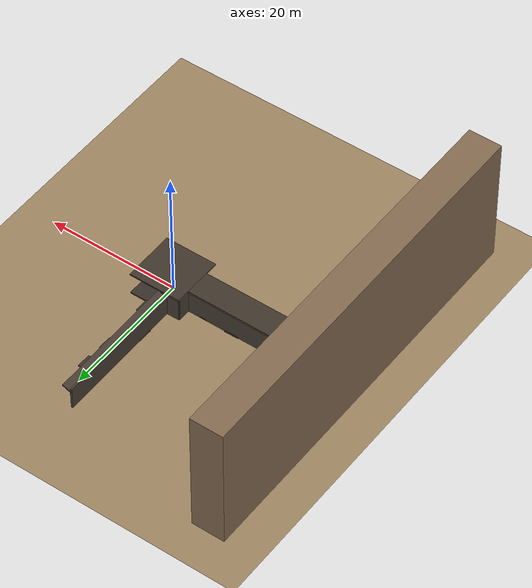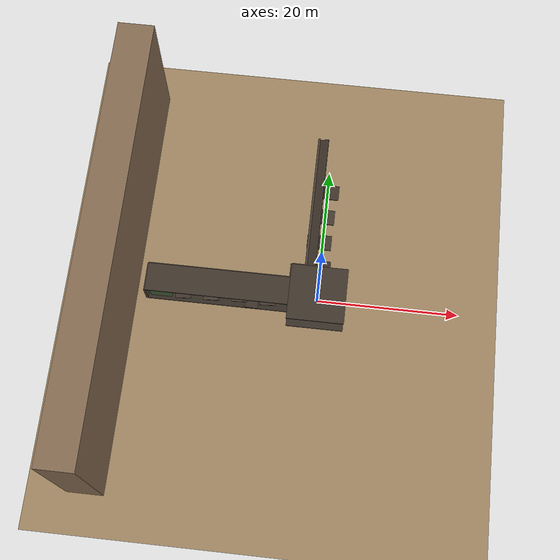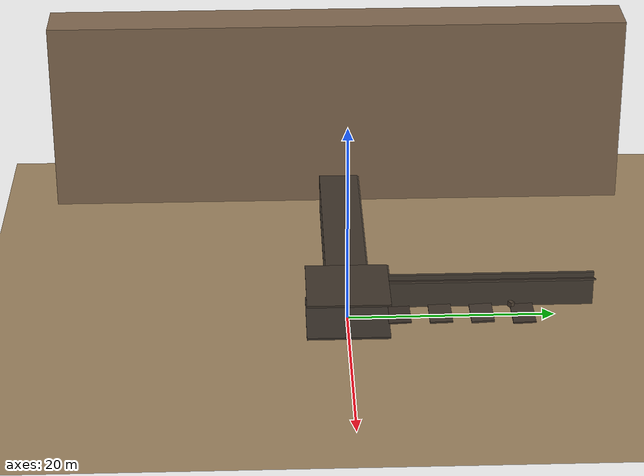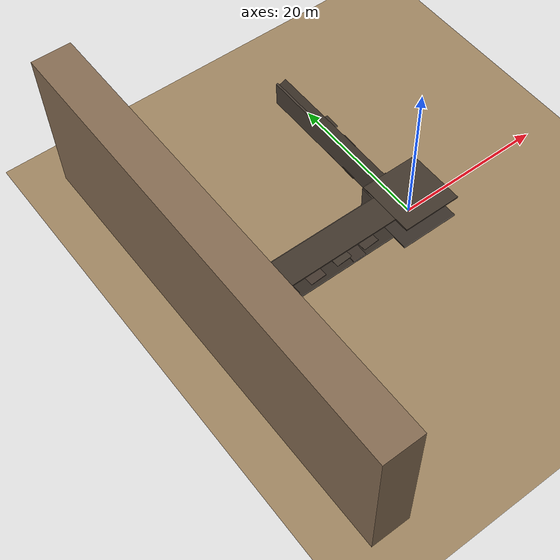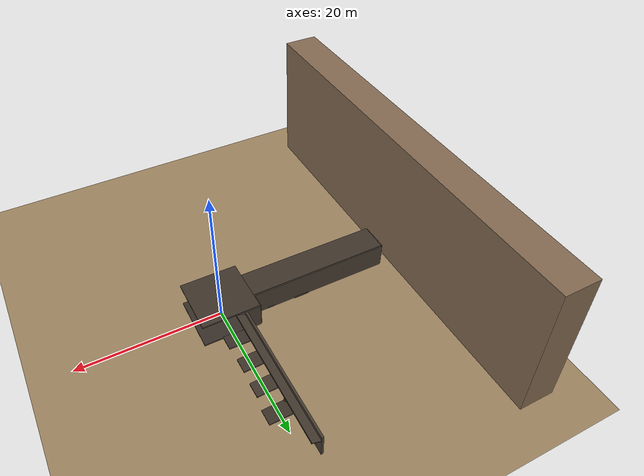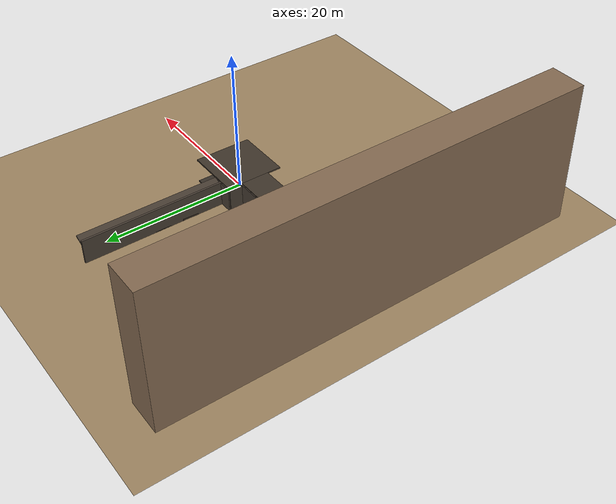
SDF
<sdf version="1.8">
 <world name="default">
  <model name="exterior_ground">
   <static>true</static>
   <pose>0 0 -0.05 0 0 0</pose>
   <link name="link">
    <collision name="col">
     <geometry><plane><normal>0 0 1</normal><size>300 300</size></plane></geometry>
    </collision>
    <visual name="vis">
     <geometry><plane><normal>0 0 1</normal><size>300 300</size></plane></geometry>
     <material>
      <ambient>0.62 0.52 0.38 1</ambient>
      <diffuse>0.62 0.52 0.38 1</diffuse>
      <specular>0.05 0.04 0.03 1</specular>
     </material>
    </visual>
   </link>
  </model>
  <model name="cliff_w">
   <static>true</static>
   <pose>-28 0 10 0 0 0</pose>
   <link name="l">
    <collision name="c"><geometry><box><size>5 60 20</size></box></geometry></collision>
    <visual name="v">
     <geometry><box><size>5 60 20</size></box></geometry>
     <material><ambient>0.52 0.42 0.32 1</ambient><diffuse>0.52 0.42 0.32 1</diffuse></material>
    </visual>
   </link>
  </model>
  <model name="junc_floor">
   <static>true</static>
   <link name="l">
    <collision name="c"><geometry><box><size>8 8 0.2</size></box></geometry></collision>
    <visual name="v">
     <geometry><box><size>8 8 0.2</size></box></geometry>
     <material><ambient>0.22 0.19 0.16 1</ambient><diffuse>0.22 0.19 0.16 1</diffuse></material>
    </visual>
   </link>
  </model>
  <model name="junc_ceil">
   <static>true</static>
   <pose>0 0 3.5 0 0 0</pose>
   <link name="l">
    <collision name="c"><geometry><box><size>8 8 0.2</size></box></geometry></collision>
    <visual name="v">
     <geometry><box><size>8 8 0.2</size></box></geometry>
     <material><ambient>0.25 0.21 0.17 1</ambient><diffuse>0.25 0.21 0.17 1</diffuse></material>
    </visual>
   </link>
  </model>
  <model name="junc_wall_n_l">
   <static>true</static>
   <pose>-3 4 1.75 0 0 0</pose>
   <link name="l">
    <collision name="c"><geometry><box><size>2 0.3 3.5</size></box></geometry></collision>
    <visual name="v">
     <geometry><box><size>2 0.3 3.5</size></box></geometry>
     <material><ambient>0.28 0.24 0.20 1</ambient><diffuse>0.28 0.24 0.20 1</diffuse></material>
    </visual>
   </link>
  </model>
  <model name="junc_wall_w_l">
   <static>true</static>
   <pose>-4 3 1.75 0 0 0</pose>
   <link name="l">
    <collision name="c"><geometry><box><size>0.3 2 3.5</size></box></geometry></collision>
    <visual name="v">
     <geometry><box><size>0.3 2 3.5</size></box></geometry>
     <material><ambient>0.28 0.24 0.20 1</ambient><diffuse>0.28 0.24 0.20 1</diffuse></material>
    </visual>
   </link>
  </model>
  <model name="junc_pillar_nw">
   <static>true</static>
   <pose>-3.85 3.85 1.75 0 0 0</pose>
   <link name="l">
    <collision name="c"><geometry><box><size>0.3 0.3 3.5</size></box></geometry></collision>
    <visual name="v">
     <geometry><box><size>0.3 0.3 3.5</size></box></geometry>
     <material><ambient>0.32 0.27 0.22 1</ambient><diffuse>0.32 0.27 0.22 1</diffuse></material>
    </visual>
   </link>
  </model>
  <model name="n_uneven_01">
   <static>true</static>
   <pose>-0.3 5 0.07 0.04 -0.03 0</pose>
   <link name="l">
    <collision name="c"><geometry><box><size>3.5 2.2 0.14</size></box></geometry></collision>
    <visual name="v">
     <geometry><box><size>3.5 2.2 0.14</size></box></geometry>
     <material><ambient>0.23 0.19 0.16 1</ambient><diffuse>0.23 0.19 0.16 1</diffuse></material>
    </visual>
   </link>
  </model>
  <model name="n_uneven_03">
   <static>true</static>
   <pose>-0.5 9 0.09 0.03 0.05 0</pose>
   <link name="l">
    <collision name="c"><geometry><box><size>3.5 2.2 0.18</size></box></geometry></collision>
    <visual name="v">
     <geometry><box><size>3.5 2.2 0.18</size></box></geometry>
     <material><ambient>0.25 0.21 0.17 1</ambient><diffuse>0.25 0.21 0.17 1</diffuse></material>
    </visual>
   </link>
  </model>
  <model name="n_uneven_05">
   <static>true</static>
   <pose>-0.4 13 0.10 0.05 0.03 0</pose>
   <link name="l">
    <collision name="c"><geometry><box><size>3.5 2.2 0.20</size></box></geometry></collision>
    <visual name="v">
     <geometry><box><size>3.5 2.2 0.20</size></box></geometry>
     <material><ambient>0.26 0.22 0.18 1</ambient><diffuse>0.26 0.22 0.18 1</diffuse></material>
    </visual>
   </link>
  </model>
  <model name="n_uneven_07">
   <static>true</static>
   <pose>-0.1 17 0.08 0.04 0.02 0</pose>
   <link name="l">
    <collision name="c"><geometry><box><size>3.5 2.2 0.16</size></box></geometry></collision>
    <visual name="v">
     <geometry><box><size>3.5 2.2 0.16</size></box></geometry>
     <material><ambient>0.24 0.20 0.16 1</ambient><diffuse>0.24 0.20 0.16 1</diffuse></material>
    </visual>
   </link>
  </model>
  <model name="n_wall_l">
   <static>true</static>
   <pose>-2 14 1.75 0 0 0</pose>
   <link name="l">
    <collision name="c"><geometry><box><size>0.3 20 3.5</size></box></geometry></collision>
    <visual name="v">
     <geometry><box><size>0.3 20 3.5</size></box></geometry>
     <material><ambient>0.28 0.24 0.20 1</ambient><diffuse>0.28 0.24 0.20 1</diffuse></material>
    </visual>
   </link>
  </model>
  <model name="n_arch_l">
   <static>true</static>
   <pose>-1.3 14 3.1 0 -0.4 0</pose>
   <link name="l">
    <collision name="c"><geometry><box><size>1.5 20 0.15</size></box></geometry></collision>
    <visual name="v">
     <geometry><box><size>1.5 20 0.15</size></box></geometry>
     <material><ambient>0.26 0.22 0.18 1</ambient><diffuse>0.26 0.22 0.18 1</diffuse></material>
    </visual>
   </link>
  </model>
  <model name="n_rock_l1">
   <static>true</static>
   <pose>-1.6 16 0.28 0 0 0.5</pose>
   <link name="l">
    <collision name="c"><geometry><box><size>0.6 0.4 0.55</size></box></geometry></collision>
    <visual name="v">
     <geometry><box><size>0.6 0.4 0.55</size></box></geometry>
     <material><ambient>0.30 0.25 0.20 1</ambient><diffuse>0.30 0.25 0.20 1</diffuse></material>
    </visual>
   </link>
  </model>
  <model name="w_floor_base">
   <static>true</static>
   <pose>-14 0 0 0 0 0</pose>
   <link name="l">
    <collision name="c"><geometry><box><size>20 4 0.2</size></box></geometry></collision>
    <visual name="v">
     <geometry><box><size>20 4 0.2</size></box></geometry>
     <material><ambient>0.20 0.17 0.14 1</ambient><diffuse>0.20 0.17 0.14 1</diffuse></material>
    </visual>
   </link>
  </model>
  <model name="w_uneven_02">
   <static>true</static>
   <pose>-7 0.4 0.09 0 -0.04 0.05</pose>
   <link name="l">
    <collision name="c"><geometry><box><size>2.2 3.5 0.18</size></box></geometry></collision>
    <visual name="v">
     <geometry><box><size>2.2 3.5 0.18</size></box></geometry>
     <material><ambient>0.25 0.21 0.17 1</ambient><diffuse>0.25 0.21 0.17 1</diffuse></material>
    </visual>
   </link>
  </model>
  <model name="w_uneven_03">
   <static>true</static>
   <pose>-9 -0.2 0.07 0 0.05 -0.03</pose>
   <link name="l">
    <collision name="c"><geometry><box><size>2.2 3.5 0.14</size></box></geometry></collision>
    <visual name="v">
     <geometry><box><size>2.2 3.5 0.14</size></box></geometry>
     <material><ambient>0.23 0.19 0.16 1</ambient><diffuse>0.23 0.19 0.16 1</diffuse></material>
    </visual>
   </link>
  </model>
  <model name="w_uneven_04">
   <static>true</static>
   <pose>-11 0.5 0.10 0 -0.03 0.04</pose>
   <link name="l">
    <collision name="c"><geometry><box><size>2.2 3.5 0.20</size></box></geometry></collision>
    <visual name="v">
     <geometry><box><size>2.2 3.5 0.20</size></box></geometry>
     <material><ambient>0.26 0.22 0.18 1</ambient><diffuse>0.26 0.22 0.18 1</diffuse></material>
    </visual>
   </link>
  </model>
  <model name="w_uneven_06">
   <static>true</static>
   <pose>-15 0.3 0.11 0 -0.05 0.03</pose>
   <link name="l">
    <collision name="c"><geometry><box><size>2.2 3.5 0.22</size></box></geometry></collision>
    <visual name="v">
     <geometry><box><size>2.2 3.5 0.22</size></box></geometry>
     <material><ambient>0.27 0.22 0.18 1</ambient><diffuse>0.27 0.22 0.18 1</diffuse></material>
    </visual>
   </link>
  </model>
  <model name="w_uneven_08">
   <static>true</static>
   <pose>-19 0.2 0.09 0 -0.04 0.05</pose>
   <link name="l">
    <collision name="c"><geometry><box><size>2.2 3.5 0.18</size></box></geometry></collision>
    <visual name="v">
     <geometry><box><size>2.2 3.5 0.18</size></box></geometry>
     <material><ambient>0.25 0.20 0.17 1</ambient><diffuse>0.25 0.20 0.17 1</diffuse></material>
    </visual>
   </link>
  </model>
  <model name="w_wall_l">
   <static>true</static>
   <pose>-14 2 1.75 0 0 0</pose>
   <link name="l">
    <collision name="c"><geometry><box><size>20 0.3 3.5</size></box></geometry></collision>
    <visual name="v">
     <geometry><box><size>20 0.3 3.5</size></box></geometry>
     <material><ambient>0.28 0.24 0.20 1</ambient><diffuse>0.28 0.24 0.20 1</diffuse></material>
    </visual>
   </link>
  </model>
  <model name="w_ceil">
   <static>true</static>
   <pose>-14 0 3.5 0 0 0</pose>
   <link name="l">
    <collision name="c"><geometry><box><size>20 4 0.2</size></box></geometry></collision>
    <visual name="v">
     <geometry><box><size>20 4 0.2</size></box></geometry>
     <material><ambient>0.25 0.21 0.17 1</ambient><diffuse>0.25 0.21 0.17 1</diffuse></material>
    </visual>
   </link>
  </model>
  <model name="w_arch_l">
   <static>true</static>
   <pose>-14 1.3 3.1 0.4 0 0</pose>
   <link name="l">
    <collision name="c"><geometry><box><size>20 1.5 0.15</size></box></geometry></collision>
    <visual name="v">
     <geometry><box><size>20 1.5 0.15</size></box></geometry>
     <material><ambient>0.26 0.22 0.18 1</ambient><diffuse>0.26 0.22 0.18 1</diffuse></material>
    </visual>
   </link>
  </model>
  <model name="w_cap">
   <static>true</static>
   <pose>-24 0 1.75 0 0 0</pose>
   <link name="l">
    <collision name="c"><geometry><box><size>0.3 4 3.5</size></box></geometry></collision>
    <visual name="v">
     <geometry><box><size>0.3 4 3.5</size></box></geometry>
     <material><ambient>0.30 0.25 0.20 1</ambient><diffuse>0.30 0.25 0.20 1</diffuse></material>
    </visual>
   </link>
  </model>
  <model name="w_rock_l1">
   <static>true</static>
   <pose>-20 1.6 0.32 0 0 0.6</pose>
   <link name="l">
    <collision name="c"><geometry><box><size>0.55 0.45 0.64</size></box></geometry></collision>
    <visual name="v">
     <geometry><box><size>0.55 0.45 0.64</size></box></geometry>
     <material><ambient>0.30 0.25 0.20 1</ambient><diffuse>0.30 0.25 0.20 1</diffuse></material>
    </visual>
   </link>
  </model>
  <model name="crack_C1">
   <static>true</static>
   <pose>-1.95 0 1.5 0 0 0</pose>
   <link name="l">
    <visual name="v">
     <geometry><box><size>0.02 2.0 1.0</size></box></geometry>
     <material><ambient>0.55 0.08 0.08 1</ambient><diffuse>0.55 0.08 0.08 1</diffuse></material>
    </visual>
   </link>
  </model>
  <model name="gas_G2">
   <static>true</static>
   <pose>-22 0 1.0 0 0 0</pose>
   <link name="l">
    <visual name="v">
     <geometry><box><size>3.0 3.0 2.0</size></box></geometry>
     <material><ambient>0.05 0.65 0.05 0.2</ambient><diffuse>0.05 0.65 0.05 0.2</diffuse></material>
     <transparency>0.8</transparency>
    </visual>
   </link>
  </model>
 </world>
</sdf>
